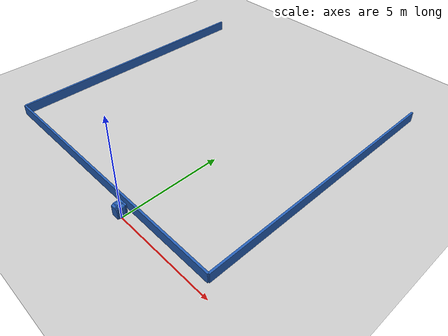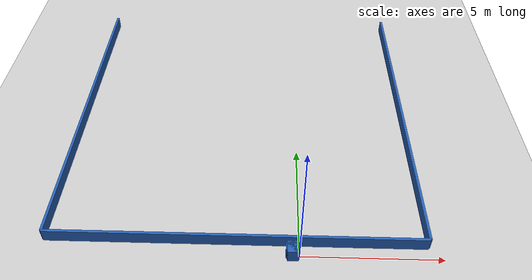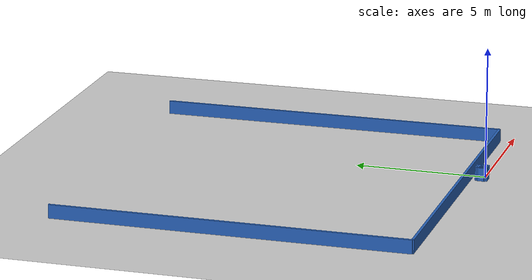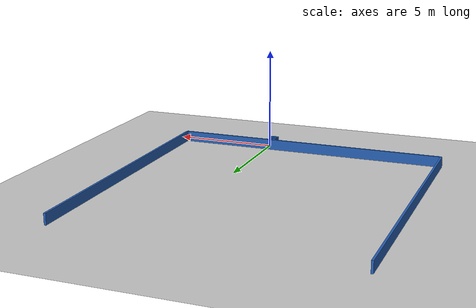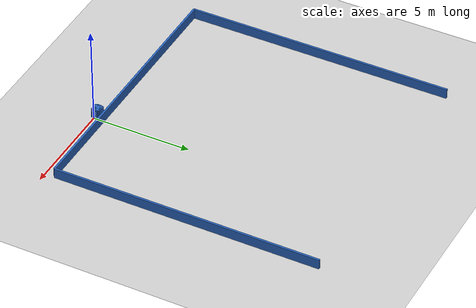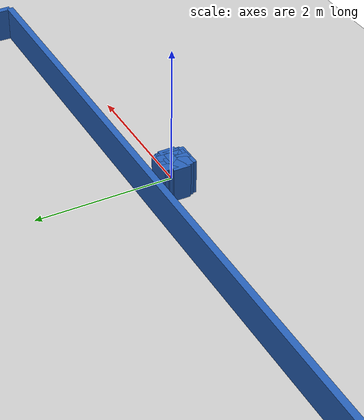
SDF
<?xml version="1.0" ?>
    <sdf version="1.5">
      <world name="default">
        <!-- A global light source -->
        <include>
          <uri>model://sun</uri>
        </include>
        <!-- A ground plane -->
        <include>
          <uri>model://ground_plane</uri>
        </include>

    <model name='libopen_space_final_T2B_77_65'>
      <static>1</static>
      <pose frame=''>-0.225000 0.075000 0.000000 0.000000 0.000000 0.000000</pose>
      <link name='link'>
        <inertial>
          <mass>1</mass>
          <inertia>
            <ixx>0.145833</ixx>
            <ixy>0</ixy>
            <ixz>0</ixz>
            <iyy>0.145833</iyy>
            <iyz>0</iyz>
            <izz>0.125</izz>
          </inertia>
        </inertial>
        <collision name='collision'>
          <geometry>
            <box>
              <size>0.11 0.43 1</size>
            </box>
          </geometry>
          <max_contacts>10</max_contacts>
          <surface>
            <contact>
              <ode/>
            </contact>
            <bounce/>
            <friction>
              <torsional>
                <ode/>
              </torsional>
              <ode/>
            </friction>
          </surface>
        </collision>
        <visual name='visual'>
          <geometry>
            <box>
              <size>0.11 0.43 1</size>
            </box>
          </geometry>
	    <material>
              <ambient>0.152000 0.379000 0.720000 1</ambient>
	      <diffuse>0.152000 0.379000 0.720000 1</diffuse>
          </material>
          <material>
            <script>
              <name>Gazebo/Grey</name>
              <uri>file://media/materials/scripts/gazebo.material</uri>
            </script>
          </material>
        </visual>
        <self_collide>0</self_collide>
        <kinematic>0</kinematic>
        <gravity>1</gravity>
      </link>
      <plugin name='libopen_space_final_T2B_77_65' filename='libopen_space_final_T2B_77_65.so'/>
    </model>

    <model name='libopen_space_final_T2B_91_57'>
      <static>1</static>
      <pose frame=''>-0.225000 0.075000 0.000000 0.000000 0.000000 0.000000</pose>
      <link name='link'>
        <inertial>
          <mass>1</mass>
          <inertia>
            <ixx>0.145833</ixx>
            <ixy>0</ixy>
            <ixz>0</ixz>
            <iyy>0.145833</iyy>
            <iyz>0</iyz>
            <izz>0.125</izz>
          </inertia>
        </inertial>
        <collision name='collision'>
          <geometry>
            <box>
              <size>0.12 0.28 1</size>
            </box>
          </geometry>
          <max_contacts>10</max_contacts>
          <surface>
            <contact>
              <ode/>
            </contact>
            <bounce/>
            <friction>
              <torsional>
                <ode/>
              </torsional>
              <ode/>
            </friction>
          </surface>
        </collision>
        <visual name='visual'>
          <geometry>
            <box>
              <size>0.12 0.28 1</size>
            </box>
          </geometry>
	    <material>
              <ambient>0.152000 0.379000 0.720000 1</ambient>
	      <diffuse>0.152000 0.379000 0.720000 1</diffuse>
          </material>
          <material>
            <script>
              <name>Gazebo/Grey</name>
              <uri>file://media/materials/scripts/gazebo.material</uri>
            </script>
          </material>
        </visual>
        <self_collide>0</self_collide>
        <kinematic>0</kinematic>
        <gravity>1</gravity>
      </link>
      <plugin name='libopen_space_final_T2B_91_57' filename='libopen_space_final_T2B_91_57.so'/>
    </model>

    <model name='libopen_space_final_T2B_112_54'>
      <static>1</static>
      <pose frame=''>-0.225000 0.075000 0.000000 0.000000 0.000000 0.000000</pose>
      <link name='link'>
        <inertial>
          <mass>1</mass>
          <inertia>
            <ixx>0.145833</ixx>
            <ixy>0</ixy>
            <ixz>0</ixz>
            <iyy>0.145833</iyy>
            <iyz>0</iyz>
            <izz>0.125</izz>
          </inertia>
        </inertial>
        <collision name='collision'>
          <geometry>
            <box>
              <size>0.28 0.17 1</size>
            </box>
          </geometry>
          <max_contacts>10</max_contacts>
          <surface>
            <contact>
              <ode/>
            </contact>
            <bounce/>
            <friction>
              <torsional>
                <ode/>
              </torsional>
              <ode/>
            </friction>
          </surface>
        </collision>
        <visual name='visual'>
          <geometry>
            <box>
              <size>0.28 0.17 1</size>
            </box>
          </geometry>
	    <material>
              <ambient>0.152000 0.379000 0.720000 1</ambient>
	      <diffuse>0.152000 0.379000 0.720000 1</diffuse>
          </material>
          <material>
            <script>
              <name>Gazebo/Grey</name>
              <uri>file://media/materials/scripts/gazebo.material</uri>
            </script>
          </material>
        </visual>
        <self_collide>0</self_collide>
        <kinematic>0</kinematic>
        <gravity>1</gravity>
      </link>
      <plugin name='libopen_space_final_T2B_112_54' filename='libopen_space_final_T2B_112_54.so'/>
    </model>

    <model name='libopen_space_final_T2B_77_83'>
      <static>1</static>
      <pose frame=''>-0.225000 0.075000 0.000000 0.000000 0.000000 0.000000</pose>
      <link name='link'>
        <inertial>
          <mass>1</mass>
          <inertia>
            <ixx>0.145833</ixx>
            <ixy>0</ixy>
            <ixz>0</ixz>
            <iyy>0.145833</iyy>
            <iyz>0</iyz>
            <izz>0.125</izz>
          </inertia>
        </inertial>
        <collision name='collision'>
          <geometry>
            <box>
              <size>0.39 0.31 1</size>
            </box>
          </geometry>
          <max_contacts>10</max_contacts>
          <surface>
            <contact>
              <ode/>
            </contact>
            <bounce/>
            <friction>
              <torsional>
                <ode/>
              </torsional>
              <ode/>
            </friction>
          </surface>
        </collision>
        <visual name='visual'>
          <geometry>
            <box>
              <size>0.39 0.31 1</size>
            </box>
          </geometry>
	    <material>
              <ambient>0.152000 0.379000 0.720000 1</ambient>
	      <diffuse>0.152000 0.379000 0.720000 1</diffuse>
          </material>
          <material>
            <script>
              <name>Gazebo/Grey</name>
              <uri>file://media/materials/scripts/gazebo.material</uri>
            </script>
          </material>
        </visual>
        <self_collide>0</self_collide>
        <kinematic>0</kinematic>
        <gravity>1</gravity>
      </link>
      <plugin name='libopen_space_final_T2B_77_83' filename='libopen_space_final_T2B_77_83.so'/>
    </model>

    <model name='libopen_space_final_T2B_57_10'>
      <static>1</static>
      <pose frame=''>-0.225000 0.075000 0.000000 0.000000 0.000000 0.000000</pose>
      <link name='link'>
        <inertial>
          <mass>1</mass>
          <inertia>
            <ixx>0.145833</ixx>
            <ixy>0</ixy>
            <ixz>0</ixz>
            <iyy>0.145833</iyy>
            <iyz>0</iyz>
            <izz>0.125</izz>
          </inertia>
        </inertial>
        <collision name='collision'>
          <geometry>
            <box>
              <size>0.48 0.25 1</size>
            </box>
          </geometry>
          <max_contacts>10</max_contacts>
          <surface>
            <contact>
              <ode/>
            </contact>
            <bounce/>
            <friction>
              <torsional>
                <ode/>
              </torsional>
              <ode/>
            </friction>
          </surface>
        </collision>
        <visual name='visual'>
          <geometry>
            <box>
              <size>0.48 0.25 1</size>
            </box>
          </geometry>
	    <material>
              <ambient>0.152000 0.379000 0.720000 1</ambient>
	      <diffuse>0.152000 0.379000 0.720000 1</diffuse>
          </material>
          <material>
            <script>
              <name>Gazebo/Grey</name>
              <uri>file://media/materials/scripts/gazebo.material</uri>
            </script>
          </material>
        </visual>
        <self_collide>0</self_collide>
        <kinematic>0</kinematic>
        <gravity>1</gravity>
      </link>
      <plugin name='libopen_space_final_T2B_57_10' filename='libopen_space_final_T2B_57_10.so'/>
    </model>

    <model name='libopen_space_final_T2B_94_79'>
      <static>1</static>
      <pose frame=''>-0.225000 0.075000 0.000000 0.000000 0.000000 0.000000</pose>
      <link name='link'>
        <inertial>
          <mass>1</mass>
          <inertia>
            <ixx>0.145833</ixx>
            <ixy>0</ixy>
            <ixz>0</ixz>
            <iyy>0.145833</iyy>
            <iyz>0</iyz>
            <izz>0.125</izz>
          </inertia>
        </inertial>
        <collision name='collision'>
          <geometry>
            <box>
              <size>0.15 0.11 1</size>
            </box>
          </geometry>
          <max_contacts>10</max_contacts>
          <surface>
            <contact>
              <ode/>
            </contact>
            <bounce/>
            <friction>
              <torsional>
                <ode/>
              </torsional>
              <ode/>
            </friction>
          </surface>
        </collision>
        <visual name='visual'>
          <geometry>
            <box>
              <size>0.15 0.11 1</size>
            </box>
          </geometry>
	    <material>
              <ambient>0.152000 0.379000 0.720000 1</ambient>
	      <diffuse>0.152000 0.379000 0.720000 1</diffuse>
          </material>
          <material>
            <script>
              <name>Gazebo/Grey</name>
              <uri>file://media/materials/scripts/gazebo.material</uri>
            </script>
          </material>
        </visual>
        <self_collide>0</self_collide>
        <kinematic>0</kinematic>
        <gravity>1</gravity>
      </link>
      <plugin name='libopen_space_final_T2B_94_79' filename='libopen_space_final_T2B_94_79.so'/>
    </model>

    <model name='libopen_space_final_T2B_109_60'>
      <static>1</static>
      <pose frame=''>-0.225000 0.075000 0.000000 0.000000 0.000000 0.000000</pose>
      <link name='link'>
        <inertial>
          <mass>1</mass>
          <inertia>
            <ixx>0.145833</ixx>
            <ixy>0</ixy>
            <ixz>0</ixz>
            <iyy>0.145833</iyy>
            <iyz>0</iyz>
            <izz>0.125</izz>
          </inertia>
        </inertial>
        <collision name='collision'>
          <geometry>
            <box>
              <size>0.38 0.47 1</size>
            </box>
          </geometry>
          <max_contacts>10</max_contacts>
          <surface>
            <contact>
              <ode/>
            </contact>
            <bounce/>
            <friction>
              <torsional>
                <ode/>
              </torsional>
              <ode/>
            </friction>
          </surface>
        </collision>
        <visual name='visual'>
          <geometry>
            <box>
              <size>0.38 0.47 1</size>
            </box>
          </geometry>
	    <material>
              <ambient>0.152000 0.379000 0.720000 1</ambient>
	      <diffuse>0.152000 0.379000 0.720000 1</diffuse>
          </material>
          <material>
            <script>
              <name>Gazebo/Grey</name>
              <uri>file://media/materials/scripts/gazebo.material</uri>
            </script>
          </material>
        </visual>
        <self_collide>0</self_collide>
        <kinematic>0</kinematic>
        <gravity>1</gravity>
      </link>
      <plugin name='libopen_space_final_T2B_109_60' filename='libopen_space_final_T2B_109_60.so'/>
    </model>

    <model name='libopen_space_final_T2B_106_71'>
      <static>1</static>
      <pose frame=''>-0.225000 0.075000 0.000000 0.000000 0.000000 0.000000</pose>
      <link name='link'>
        <inertial>
          <mass>1</mass>
          <inertia>
            <ixx>0.145833</ixx>
            <ixy>0</ixy>
            <ixz>0</ixz>
            <iyy>0.145833</iyy>
            <iyz>0</iyz>
            <izz>0.125</izz>
          </inertia>
        </inertial>
        <collision name='collision'>
          <geometry>
            <box>
              <size>0.29 0.41 1</size>
            </box>
          </geometry>
          <max_contacts>10</max_contacts>
          <surface>
            <contact>
              <ode/>
            </contact>
            <bounce/>
            <friction>
              <torsional>
                <ode/>
              </torsional>
              <ode/>
            </friction>
          </surface>
        </collision>
        <visual name='visual'>
          <geometry>
            <box>
              <size>0.29 0.41 1</size>
            </box>
          </geometry>
	    <material>
              <ambient>0.152000 0.379000 0.720000 1</ambient>
	      <diffuse>0.152000 0.379000 0.720000 1</diffuse>
          </material>
          <material>
            <script>
              <name>Gazebo/Grey</name>
              <uri>file://media/materials/scripts/gazebo.material</uri>
            </script>
          </material>
        </visual>
        <self_collide>0</self_collide>
        <kinematic>0</kinematic>
        <gravity>1</gravity>
      </link>
      <plugin name='libopen_space_final_T2B_106_71' filename='libopen_space_final_T2B_106_71.so'/>
    </model>

    <model name='libopen_space_final_T2B_120_45'>
      <static>1</static>
      <pose frame=''>-0.225000 0.075000 0.000000 0.000000 0.000000 0.000000</pose>
      <link name='link'>
        <inertial>
          <mass>1</mass>
          <inertia>
            <ixx>0.145833</ixx>
            <ixy>0</ixy>
            <ixz>0</ixz>
            <iyy>0.145833</iyy>
            <iyz>0</iyz>
            <izz>0.125</izz>
          </inertia>
        </inertial>
        <collision name='collision'>
          <geometry>
            <box>
              <size>0.32 0.31 1</size>
            </box>
          </geometry>
          <max_contacts>10</max_contacts>
          <surface>
            <contact>
              <ode/>
            </contact>
            <bounce/>
            <friction>
              <torsional>
                <ode/>
              </torsional>
              <ode/>
            </friction>
          </surface>
        </collision>
        <visual name='visual'>
          <geometry>
            <box>
              <size>0.32 0.31 1</size>
            </box>
          </geometry>
	    <material>
              <ambient>0.152000 0.379000 0.720000 1</ambient>
	      <diffuse>0.152000 0.379000 0.720000 1</diffuse>
          </material>
          <material>
            <script>
              <name>Gazebo/Grey</name>
              <uri>file://media/materials/scripts/gazebo.material</uri>
            </script>
          </material>
        </visual>
        <self_collide>0</self_collide>
        <kinematic>0</kinematic>
        <gravity>1</gravity>
      </link>
      <plugin name='libopen_space_final_T2B_120_45' filename='libopen_space_final_T2B_120_45.so'/>
    </model>

    <model name='libopen_space_final_T2B_55_44'>
      <static>1</static>
      <pose frame=''>-0.225000 0.075000 0.000000 0.000000 0.000000 0.000000</pose>
      <link name='link'>
        <inertial>
          <mass>1</mass>
          <inertia>
            <ixx>0.145833</ixx>
            <ixy>0</ixy>
            <ixz>0</ixz>
            <iyy>0.145833</iyy>
            <iyz>0</iyz>
            <izz>0.125</izz>
          </inertia>
        </inertial>
        <collision name='collision'>
          <geometry>
            <box>
              <size>0.42 0.36 1</size>
            </box>
          </geometry>
          <max_contacts>10</max_contacts>
          <surface>
            <contact>
              <ode/>
            </contact>
            <bounce/>
            <friction>
              <torsional>
                <ode/>
              </torsional>
              <ode/>
            </friction>
          </surface>
        </collision>
        <visual name='visual'>
          <geometry>
            <box>
              <size>0.42 0.36 1</size>
            </box>
          </geometry>
	    <material>
              <ambient>0.152000 0.379000 0.720000 1</ambient>
	      <diffuse>0.152000 0.379000 0.720000 1</diffuse>
          </material>
          <material>
            <script>
              <name>Gazebo/Grey</name>
              <uri>file://media/materials/scripts/gazebo.material</uri>
            </script>
          </material>
        </visual>
        <self_collide>0</self_collide>
        <kinematic>0</kinematic>
        <gravity>1</gravity>
      </link>
      <plugin name='libopen_space_final_T2B_55_44' filename='libopen_space_final_T2B_55_44.so'/>
    </model>

    <model name='libopen_space_final_T2B_139_84'>
      <static>1</static>
      <pose frame=''>-0.225000 0.075000 0.000000 0.000000 0.000000 0.000000</pose>
      <link name='link'>
        <inertial>
          <mass>1</mass>
          <inertia>
            <ixx>0.145833</ixx>
            <ixy>0</ixy>
            <ixz>0</ixz>
            <iyy>0.145833</iyy>
            <iyz>0</iyz>
            <izz>0.125</izz>
          </inertia>
        </inertial>
        <collision name='collision'>
          <geometry>
            <box>
              <size>0.12 0.31 1</size>
            </box>
          </geometry>
          <max_contacts>10</max_contacts>
          <surface>
            <contact>
              <ode/>
            </contact>
            <bounce/>
            <friction>
              <torsional>
                <ode/>
              </torsional>
              <ode/>
            </friction>
          </surface>
        </collision>
        <visual name='visual'>
          <geometry>
            <box>
              <size>0.12 0.31 1</size>
            </box>
          </geometry>
	    <material>
              <ambient>0.152000 0.379000 0.720000 1</ambient>
	      <diffuse>0.152000 0.379000 0.720000 1</diffuse>
          </material>
          <material>
            <script>
              <name>Gazebo/Grey</name>
              <uri>file://media/materials/scripts/gazebo.material</uri>
            </script>
          </material>
        </visual>
        <self_collide>0</self_collide>
        <kinematic>0</kinematic>
        <gravity>1</gravity>
      </link>
      <plugin name='libopen_space_final_T2B_139_84' filename='libopen_space_final_T2B_139_84.so'/>
    </model>

        <model name='bottom_wall'>
          <static>1</static>
          <pose frame=''>-2.25 0.5 0.000000 0.000000 0.000000 1.57079632</pose>
          <link name='link'>
            <inertial>
            <mass>1</mass>
            <inertia>
              <ixx>0.145833</ixx>
              <ixy>0</ixy>
              <ixz>0</ixz>
              <iyy>0.145833</iyy>
              <iyz>0</iyz>
              <izz>0.125</izz>
            </inertia>
            </inertial>
            <collision name='collision'>
            <geometry>
              <box>
              <size>0.1 13.5 1</size>
              </box>
            </geometry>
            <max_contacts>10</max_contacts>
            <surface>
              <contact>
              <ode/>
              </contact>
              <bounce/>
              <friction>
              <torsional>
                <ode/>
              </torsional>
              <ode/>
              </friction>
            </surface>
            </collision>
            <visual name='visual'>
            <geometry>
              <box>
              <size>0.1 13.5 1</size>
              </box>
            </geometry>
            <material>
              <ambient>0.152000 0.379000 0.720000 1</ambient>
            <diffuse>0.152000 0.379000 0.720000 1</diffuse>
            </material>
            <material>
              <script>
              <name>Gazebo/Grey</name>
              <uri>file://media/materials/scripts/gazebo.material</uri>
              </script>
            </material>
            </visual>
            <self_collide>0</self_collide>
            <kinematic>0</kinematic>
            <gravity>1</gravity>
          </link>
        </model>

        <model name='left_wall'>
          <static>1</static>
          <pose frame=''>-9 7.25 0.000000 0.000000 0.000000 0.000000</pose>
          <link name='link'>
            <inertial>
            <mass>1</mass>
            <inertia>
              <ixx>0.145833</ixx>
              <ixy>0</ixy>
              <ixz>0</ixz>
              <iyy>0.145833</iyy>
              <iyz>0</iyz>
              <izz>0.125</izz>
            </inertia>
            </inertial>
            <collision name='collision'>
            <geometry>
              <box>
              <size>0.1 13.5 1</size>
              </box>
            </geometry>
            <max_contacts>10</max_contacts>
            <surface>
              <contact>
              <ode/>
              </contact>
              <bounce/>
              <friction>
              <torsional>
                <ode/>
              </torsional>
              <ode/>
              </friction>
            </surface>
            </collision>
            <visual name='visual'>
            <geometry>
              <box>
              <size>0.1 13.5 1</size>
              </box>
            </geometry>
            <material>
              <ambient>0.152000 0.379000 0.720000 1</ambient>
            <diffuse>0.152000 0.379000 0.720000 1</diffuse>
            </material>
            <material>
              <script>
              <name>Gazebo/Grey</name>
              <uri>file://media/materials/scripts/gazebo.material</uri>
              </script>
            </material>
            </visual>
            <self_collide>0</self_collide>
            <kinematic>0</kinematic>
            <gravity>1</gravity>
          </link>
        </model>

        <model name='right_wall'>
          <static>1</static>
          <pose frame=''>4.5 7.25 0.000000 0.000000 0.000000 0.000000</pose>
          <link name='link'>
            <inertial>
            <mass>1</mass>
            <inertia>
              <ixx>0.145833</ixx>
              <ixy>0</ixy>
              <ixz>0</ixz>
              <iyy>0.145833</iyy>
              <iyz>0</iyz>
              <izz>0.125</izz>
            </inertia>
            </inertial>
            <collision name='collision'>
            <geometry>
              <box>
              <size>0.1 13.5 1</size>
              </box>
            </geometry>
            <max_contacts>10</max_contacts>
            <surface>
              <contact>
              <ode/>
              </contact>
              <bounce/>
              <friction>
              <torsional>
                <ode/>
              </torsional>
              <ode/>
              </friction>
            </surface>
            </collision>
            <visual name='visual'>
            <geometry>
              <box>
              <size>0.1 13.5 1</size>
              </box>
            </geometry>
            <material>
              <ambient>0.152000 0.379000 0.720000 1</ambient>
            <diffuse>0.152000 0.379000 0.720000 1</diffuse>
            </material>
            <material>
              <script>
              <name>Gazebo/Grey</name>
              <uri>file://media/materials/scripts/gazebo.material</uri>
              </script>
            </material>
            </visual>
            <self_collide>0</self_collide>
            <kinematic>0</kinematic>
            <gravity>1</gravity>
          </link>
        </model>

      </world>
    </sdf>"
